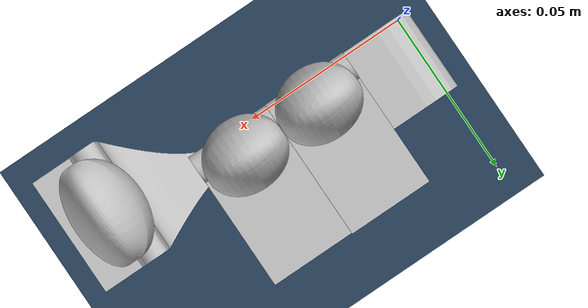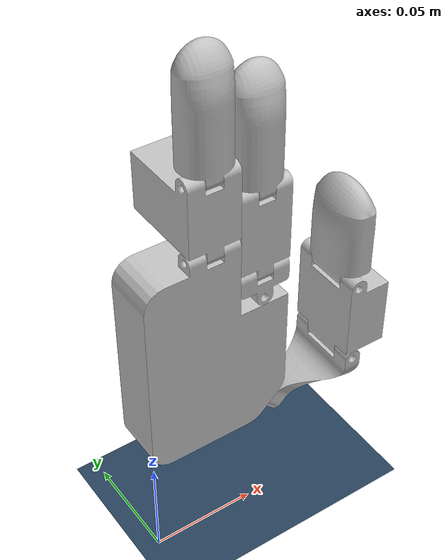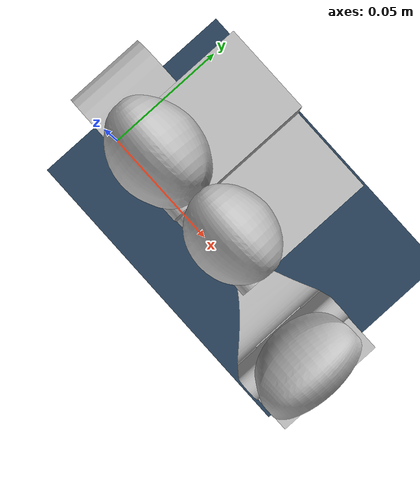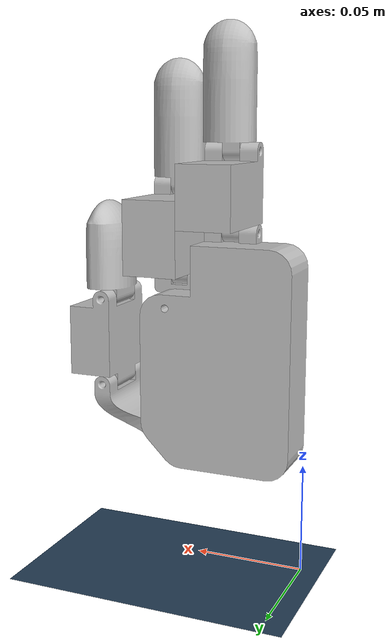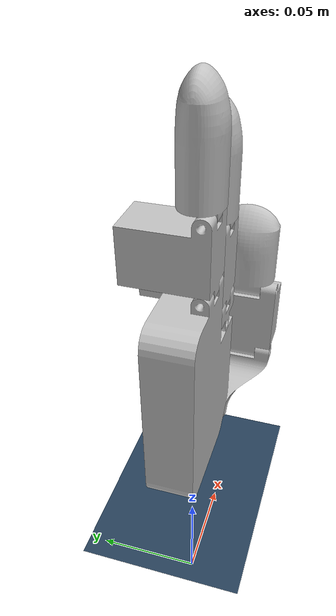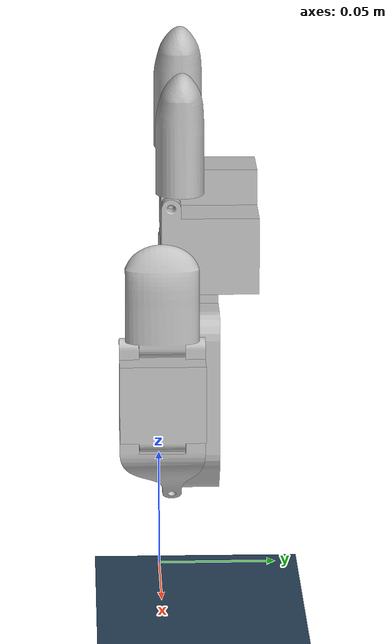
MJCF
<mujoco model="Gripper3_scene">
  <option integrator="Euler" solver="Newton" />
  <compiler angle="radian" meshdir="meshes"/>

  <visual>
    <global offwidth="3840" offheight="2160" azimuth="-35" elevation="-35" fovy="8"/>
    <quality shadowsize="4096" offsamples="4"/>
    <headlight diffuse='0.6 0.6 0.6' ambient='.3 .3 .3' specular='0 0 0'/>
    <scale com="0.05" camera="0.06" framelength="0.5" framewidth="0.02" forcewidth="0.1" contactwidth="0.01" contactheight="0.05"/>
  </visual>

  <asset>
    <texture type='2d' name='groundplane' builtin='checker' mark='edge' rgb1='0.2 0.3 0.4' rgb2='0.1 0.2 0.3' markrgb='0.8 0.8 0.8' width='300' height='300'/>
    <material name='groundplane' texture='groundplane' texuniform='true' texrepeat='5 5' reflectance='0.2'/>
  </asset>

  <asset>
    <mesh name="base_link" file="base_link.STL"/>
    <mesh name="link_thumb_1" file="link_thumb_1.STL"/>
    <mesh name="link_thumb_2" file="link_thumb_2.STL"/>
    <mesh name="link_thumb_3" file="link_thumb_3.STL"/>
    <mesh name="link_index_1" file="link_index_1.STL"/>
    <mesh name="link_index_2" file="link_index_2.STL"/>
    <mesh name="link_index_3" file="link_index_3.STL"/>
    <mesh name="link_mid_1" file="link_mid_1.STL"/>
    <mesh name="link_mid_2" file="link_mid_2.STL"/>
  </asset>

  <worldbody>

    <light castshadow="false" directional='true' diffuse='.3 .3 .3' specular='0.3 0.3 0.3' pos='-1 -1 1' dir='1 1 -1'/>
    <light directional='true' diffuse='.3 .3 .3' specular='0.3 0.3 0.3' pos='0 0 1' dir='-1 1 -1'/>
    <light castshadow="false" directional='true' diffuse='.3 .3 .3' specular='0.3 0.3 0.3' pos='0 1 1' dir='0 -1 -1'/>
    <geom name='floor' type='plane' size='0 0 0.01' material='groundplane' pos='0 0 0'/>

    <!-- **************** Gripper3 ********************* -->
    <body name="Gripper3" pos="0 0 0.05" quat="1 1 0 0">
      <geom contype="0" conaffinity="0" type="mesh" rgba="0.75294 0.75294 0.75294 1" mesh="base_link"/>
      <body name="link_thumb_1" pos="0.067015 0.0019846 -0.004" quat="0.65328 0.653282 0.270599 0.270598">
        <inertial pos="0.025141 0.0029481 -0.00024404" quat="-0.152768 0.619773 0.183829 0.747496" mass="0.01606" diaginertia="1.9022e-06 1.24268e-06 8.08384e-07"/>
        <joint damping='.01'  name="joint_thumb_1" pos="0 0 0" axis="0 0 1" range="-1.57 1.57"/>
        <geom type="mesh" rgba="0.75294 0.75294 0.75294 1" mesh="link_thumb_1"/>
        <body name="link_thumb_2" pos="0.038891 0.022 -0.0035574" quat="0.65328 -0.653282 0.270598 0.270599">
          <inertial pos="0.019915 -0.0055811 -0.0175" quat="0.707107 0 0 0.707107" mass="0.065019" diaginertia="1.1441e-05 8.2971e-06 7.2259e-06"/>
          <joint damping='.01'  name="joint_thumb_2" pos="0 0 0" axis="0 0 1" range="-1.57 1.57"/>
          <geom type="mesh" rgba="0.75294 0.75294 0.75294 1" mesh="link_thumb_2"/>
          <body name="link_thumb_3" pos="0.04 0 0">
            <inertial pos="0.020262 -0.0029322 -0.0175" quat="0.5061 0.506102 0.493814 0.493833" mass="0.047615" diaginertia="7.44324e-06 5.8286e-06 3.73556e-06"/>
            <joint damping='.01'  name="joint_thumb_3" pos="0 0 0" axis="0 0 1" range="-1.57 1.57"/>
            <geom type="mesh" rgba="0.75294 0.75294 0.75294 1" mesh="link_thumb_3"/>
          </body>
        </body>
      </body>
      <body name="link_index_1" pos="0.057 0.072 0" quat="-2.59734e-06 -0.707105 -0.707108 -2.59735e-06">
        <inertial pos="0.0071476 0 0.004" quat="0.707107 0.707107 0 0" mass="0.0052318" diaginertia="1.3972e-07 1.3106e-07 4.7319e-08"/>
        <joint damping='.01'  name="joint_index_1" pos="0 0 0" axis="0 0 1" range="0 0.785"/>
        <geom type="mesh" rgba="0.75294 0.75294 0.75294 1" mesh="link_index_1"/>
        <body name="link_index_2" pos="0.012008 0.012 0.004" quat="0.707105 -0.707108 0 0">
          <inertial pos="0.020256 -0.015419 -0.012" quat="0.5 0.5 -0.5 0.5" mass="0.086072" diaginertia="1.8171e-05 1.5074e-05 1.1092e-05"/>
          <joint damping='.01'  name="joint_index_2" pos="0 0 0" axis="0 0 1" range="0 1.57"/>
          <geom type="mesh" rgba="0.75294 0.75294 0.75294 1" mesh="link_index_2"/>
          <body name="link_index_3" pos="0.04 0 0">
            <inertial pos="0.025657 -0.0038147 -0.012635" quat="0.502563 0.502506 0.497476 0.497429" mass="0.044219" diaginertia="8.80066e-06 8.4244e-06 2.40524e-06"/>
            <joint damping='.01'  name="joint_index_3" pos="0 0 0" axis="0 0 1" range="0 3.14"/>
            <geom type="mesh" rgba="0.75294 0.75294 0.75294 1" mesh="link_index_3"/>
          </body>
        </body>
      </body>
      <body name="link_mid_1" pos="0.021 0.104 -0.004" quat="0.499998 0.5 0.500002 0.5">
        <inertial pos="0.017763 -0.015315 0.012" quat="0.5 0.5 -0.5 0.5" mass="0.073112" diaginertia="1.3616e-05 1.2724e-05 7.6435e-06"/>
        <joint damping='.01'  name="joint_mid_1" pos="0 0 0" axis="0 0 1" range="0 1.57"/>
        <geom type="mesh" rgba="0.75294 0.75294 0.75294 1" mesh="link_mid_1"/>
        <body name="link_mid_2" pos="0.035 0 0">
          <inertial pos="0.025657 -0.0036078 0.012635" quat="0.502562 0.502507 0.497476 0.49743" mass="0.044219" diaginertia="8.80066e-06 8.4245e-06 2.40524e-06"/>
          <joint damping='.01'  name="joint_mid_2" pos="0 0 0" axis="0 0 1" range="0 3.14"/>
          <geom type="mesh" rgba="0.75294 0.75294 0.75294 1" mesh="link_mid_2"/>
        </body>
      </body>
    </body>
  </worldbody>

  <actuator>

    <position name="joint_thumb_1" joint="joint_thumb_1" forcelimited="true" forcerange="-100 100" ctrlrange="-1.57 1.57" kp='1.5' kv='0.05'/>
    <position name="joint_thumb_2" joint="joint_thumb_2" forcelimited="true" forcerange="-100 100" ctrlrange="-1.57 1.57" kp='1.5' kv='0.01'/>
    <position name="joint_thumb_3" joint="joint_thumb_3" forcelimited="true" forcerange="-100 100" ctrlrange="-1.57 1.57" kp='1.5' kv='0.01'/>

    <position name="joint_index_1" joint="joint_index_1" forcelimited="true" forcerange="-100 100" ctrlrange="0 0.7857" kp='1.5' kv='0.01'/>
    <position name="joint_index_2" joint="joint_index_2" forcelimited="true" forcerange="-100 100" ctrlrange="0 1.57" kp='1.5' kv='0.01'/>
    <position name="joint_index_3" joint="joint_index_3" forcelimited="true" forcerange="-100 100" ctrlrange="0 3.14" kp='1.5' kv='0.01'/>

    <position name="joint_mid_1" joint="joint_mid_1" forcelimited="true" forcerange="-100 100" ctrlrange="0 1.57" kp='1.5' kv='0.01'/>
    <position name="joint_mid_2" joint="joint_mid_2" forcelimited="true" forcerange="-100 100" ctrlrange="0 3.14" kp='1.5' kv='0.01'/>
  </actuator>

</mujoco>
